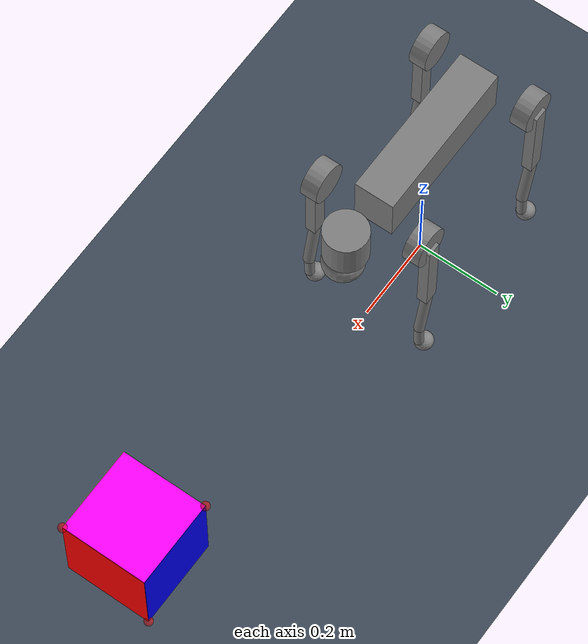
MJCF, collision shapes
<mujoco model="go2 scene">
  <include file="go2_posctrl.xml"/>
  <statistic center="0 0 0.1" extent="0.8"/>

  <visual>
    <headlight diffuse="0.6 0.58 0.55" ambient="0.25 0.25 0.25" specular="0.3 0.3 0.3"/>
    <rgba haze="0.15 0.25 0.35 1"/>
    <global azimuth="140" elevation="-20"/>
  </visual>

  <asset>
    <texture type="skybox" builtin="gradient"
             rgb1="0.4 0.6 0.8" rgb2="0.05 0.08 0.15"
             width="512" height="3072"/>
    <texture type="2d" name="groundplane" builtin="checker" mark="edge"
             rgb1="0.3 0.35 0.4" rgb2="0.18 0.22 0.28"
             markrgb="0.9 0.9 0.9" width="300" height="300"/>
    <material name="groundplane" texture="groundplane"
              texuniform="true" texrepeat="5 5" reflectance="0.35"/>
  </asset>

  <worldbody>
      <camera name="fixed_cam" pos="2.774 -3.206 3.059" xyaxes="0.756 0.654 -0.000 -0.383 0.442 0.811"/>

    <light name="key_light"
           pos="-2 -3 4" dir="0.4 0.6 -0.7"
           diffuse="1.0 0.95 0.85" specular="0.4 0.38 0.32"
           ambient="0.0 0.0 0.0"
           castshadow="true" directional="true"/>

    <light name="fill_light"
           pos="3 2 3" dir="-0.5 -0.4 -0.6"
           diffuse="0.35 0.4 0.5" specular="0.05 0.05 0.08"
           ambient="0.0 0.0 0.0"
           castshadow="false" directional="true"/>

    <geom name="floor" size="0 0 0.05" type="plane" material="groundplane"/>

    <body name="obj" pos="1.0 0.0 0.3">
      <freejoint />

      <!-- Collision + mass go here -->
      <geom name="obj_col"
            type="box"
            size="0.1 0.1 0.1"
            rgba="0 0 0 0"
            mass="0.2"/>

      <!-- Visual faces only (no mass, no collisions) -->

      <!-- +X face -->
      <geom type="box" pos="0.0998 0 0"
            size="0.001 0.1 0.1"
            rgba="1 0 0 1"
            contype="0" conaffinity="0" density="0"/>

      <!-- -X face -->
      <geom type="box" pos="-0.0998 0 0"
            size="0.001 0.1 0.1"
            rgba="0 1 0 1"
            contype="0" conaffinity="0" density="0"/>

      <!-- +Y face -->
      <geom type="box" pos="0 0.0998 0"
            size="0.1 0.001 0.1"
            rgba="0 0 1 1"
            contype="0" conaffinity="0" density="0"/>

      <!-- -Y face -->
      <geom type="box" pos="0 -0.0998 0"
            size="0.1 0.001 0.1"
            rgba="1 1 0 1"
            contype="0" conaffinity="0" density="0"/>

      <!-- +Z face -->
      <geom type="box" pos="0 0 0.0998"
            size="0.1 0.1 0.001"
            rgba="1 0 1 1"
            contype="0" conaffinity="0" density="0"/>

      <!-- -Z face -->
      <geom type="box" pos="0 0 -0.0998"
            size="0.1 0.1 0.001"
            rgba="0 1 1 1"
            contype="0" conaffinity="0" density="0"/>

      <!-- Box markers -->
      <geom name="box_marker_0" type="sphere" pos="-0.0998 0.1 0.1"
            size="0.01"
            rgba="1 0 0 0.5"
            contype="0" conaffinity="0" density="0"/>

      <geom name="box_marker_1" type="sphere" pos="0.1 -0.0998 0.1"
            size="0.01"
            rgba="1 0 0 0.5"
            contype="0" conaffinity="0" density="0"/>

      <geom name="box_marker_2" type="sphere" pos="0.1 0.1 -0.0998"
            size="0.01"
            rgba="1 0 0 0.5"
            contype="0" conaffinity="0" density="0"/>
    </body>
  </worldbody>
</mujoco>

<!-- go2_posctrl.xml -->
<mujoco model="go2">
  <compiler angle="radian" meshdir="assets" autolimits="true"/>

  <option cone="elliptic" impratio="100"/>

  <default>
    <default class="go2">
      <geom friction="0.6" margin="0.001" condim="1"/>
      <joint armature="0.01" frictionloss="0.2"/>
      <position kp="500" dampratio="1" inheritrange="1"/>
      <default class="visual">
        <geom type="mesh" contype="0" conaffinity="0" group="2"/>
      </default>
      <default class="collision">
        <geom group="3"/>
        <default class="foot">
          <geom size="0.022" pos="-0.002 0 -0.213" priority="1" solimp="0.015 1 0.022" condim="6"
            friction="0.8 0.02 0.01"/>
        </default>
      </default>
    </default>
  </default>

  <asset>
    <material name="metal" rgba=".9 .95 .95 1"/>
    <material name="black" rgba="0 0 0 1"/>
    <material name="white" rgba="1 1 1 1"/>
    <material name="gray" rgba="0.671705 0.692426 0.774270 1"/>

    <mesh file="base_0.obj"/>
    <mesh file="base_1.obj"/>
    <mesh file="base_2.obj"/>
    <mesh file="base_3.obj"/>
    <mesh file="base_4.obj"/>
    <mesh file="hip_0.obj"/>
    <mesh file="hip_1.obj"/>
    <mesh file="thigh_0.obj"/>
    <mesh file="thigh_1.obj"/>
    <mesh file="thigh_mirror_0.obj"/>
    <mesh file="thigh_mirror_1.obj"/>
    <mesh file="calf_0.obj"/>
    <mesh file="calf_1.obj"/>
    <mesh file="calf_mirror_0.obj"/>
    <mesh file="calf_mirror_1.obj"/>
    <mesh file="foot.obj"/>
  </asset>

  <worldbody>
    <body name="base" pos="0 0 0.445" childclass="go2">
      <inertial pos="0.021112 0 -0.005366" quat="-0.000543471 0.713435 -0.00173769 0.700719" mass="6.921"
        diaginertia="0.107027 0.0980771 0.0244531"/>
      <freejoint/>
      <geom mesh="base_0" material="black" class="visual"/>
      <geom mesh="base_1" material="black" class="visual"/>
      <geom mesh="base_2" material="black" class="visual"/>
      <geom mesh="base_3" material="white" class="visual"/>
      <geom mesh="base_4" material="gray" class="visual"/>
      <geom size="0.1881 0.04675 0.057" type="box" class="collision"/>
      <geom size="0.05 0.045" pos="0.285 0 0.01" type="cylinder" class="collision"/>
      <geom size="0.047" pos="0.293 0 -0.06" class="collision"/>
      <site name="imu" pos="-0.02557 0 0.04232"/>
      <body name="FL_hip" pos="0.1934 0.0465 0">
        <inertial pos="-0.0054 0.00194 -0.000105" quat="0.497014 0.499245 0.505462 0.498237" mass="0.678"
          diaginertia="0.00088403 0.000596003 0.000479967"/>

        <joint name="FL_hip_joint" axis="1 0 0" range="-1.0472 1.0472" actuatorfrcrange="-23.7 23.7"/>

        <geom mesh="hip_0" material="metal" class="visual"/>
        <geom mesh="hip_1" material="gray" class="visual"/>
        <geom size="0.046 0.02" pos="0 0.08 0" quat="1 1 0 0" type="cylinder" class="collision"/>
        <body name="FL_thigh" pos="0 0.0955 0">
          <inertial pos="-0.00374 -0.0223 -0.0327" quat="0.829533 0.0847635 -0.0200632 0.551623" mass="1.152"
            diaginertia="0.00594973 0.00584149 0.000878787"/>

          <joint name="FL_thigh_joint" axis="0 1 0" range="-1.5708 3.4907" actuatorfrcrange="-23.7 23.7"/>

          <geom mesh="thigh_0" material="metal" class="visual"/>
          <geom mesh="thigh_1" material="gray" class="visual"/>
          <geom size="0.1065 0.01225 0.017" pos="0 0 -0.1065" quat="0.707107 0 0.707107 0" type="box"
            class="collision"/>
          <body name="FL_calf" pos="0 0 -0.213">
            <inertial pos="0.00629595 -0.000622121 -0.141417" quat="0.710672 0.00154099 -0.00450087 0.703508"
              mass="0.241352" diaginertia="0.0014901 0.00146356 5.31397e-05"/>

            <joint name="FL_calf_joint" axis="0 1 0" range="-2.7227 -0.83776" actuatorfrcrange="-45.43 45.43"/>

            <geom mesh="calf_0" material="gray" class="visual"/>
            <geom mesh="calf_1" material="black" class="visual"/>
            <geom size="0.012 0.06" pos="0.008 0 -0.06" quat="0.994493 0 -0.104807 0" type="cylinder"
              class="collision"/>
            <geom size="0.011 0.0325" pos="0.02 0 -0.148" quat="0.999688 0 0.0249974 0" type="cylinder"
              class="collision"/>
            <geom pos="0 0 -0.213" mesh="foot" class="visual" material="black"/>
            <geom name="FL" class="foot"/>
          </body>
        </body>
      </body>
      <body name="FR_hip" pos="0.1934 -0.0465 0">
        <inertial pos="-0.0054 -0.00194 -0.000105" quat="0.498237 0.505462 0.499245 0.497014" mass="0.678"
          diaginertia="0.00088403 0.000596003 0.000479967"/>

        <joint name="FR_hip_joint" axis="1 0 0" range="-1.0472 1.0472" actuatorfrcrange="-23.7 23.7"/>

        <geom mesh="hip_0" material="metal" class="visual" quat="4.63268e-05 1 0 0"/>
        <geom mesh="hip_1" material="gray" class="visual" quat="4.63268e-05 1 0 0"/>
        <geom size="0.046 0.02" pos="0 -0.08 0" quat="0.707107 0.707107 0 0" type="cylinder" class="collision"/>
        <body name="FR_thigh" pos="0 -0.0955 0">
          <inertial pos="-0.00374 0.0223 -0.0327" quat="0.551623 -0.0200632 0.0847635 0.829533" mass="1.152"
            diaginertia="0.00594973 0.00584149 0.000878787"/>

          <joint name="FR_thigh_joint" axis="0 1 0" range="-1.5708 3.4907" actuatorfrcrange="-23.7 23.7"/>

          <geom mesh="thigh_mirror_0" material="metal" class="visual"/>
          <geom mesh="thigh_mirror_1" material="gray" class="visual"/>
          <geom size="0.1065 0.01225 0.017" pos="0 0 -0.1065" quat="0.707107 0 0.707107 0" type="box"
            class="collision"/>
          <body name="FR_calf" pos="0 0 -0.213">
            <inertial pos="0.00629595 0.000622121 -0.141417" quat="0.703508 -0.00450087 0.00154099 0.710672"
              mass="0.241352" diaginertia="0.0014901 0.00146356 5.31397e-05"/>

            <joint name="FR_calf_joint" axis="0 1 0" range="-2.7227 -0.83776" actuatorfrcrange="-45.43 45.43"/>

            <geom mesh="calf_mirror_0" material="gray" class="visual"/>
            <geom mesh="calf_mirror_1" material="black" class="visual"/>
            <geom size="0.013 0.06" pos="0.01 0 -0.06" quat="0.995004 0 -0.0998334 0" type="cylinder"
              class="collision"/>
            <geom size="0.011 0.0325" pos="0.02 0 -0.148" quat="0.999688 0 0.0249974 0" type="cylinder"
              class="collision"/>
            <geom pos="0 0 -0.213" mesh="foot" class="visual" material="black"/>
            <geom name="FR" class="foot"/>
          </body>
        </body>
      </body>
      <body name="RL_hip" pos="-0.1934 0.0465 0">
        <inertial pos="0.0054 0.00194 -0.000105" quat="0.505462 0.498237 0.497014 0.499245" mass="0.678"
          diaginertia="0.00088403 0.000596003 0.000479967"/>

        <joint name="RL_hip_joint" axis="1 0 0" range="-1.0472 1.0472" actuatorfrcrange="-23.7 23.7"/>

        <geom mesh="hip_0" material="metal" class="visual" quat="4.63268e-05 0 1 0"/>
        <geom mesh="hip_1" material="gray" class="visual" quat="4.63268e-05 0 1 0"/>
        <geom size="0.046 0.02" pos="0 0.08 0" quat="0.707107 0.707107 0 0" type="cylinder" class="collision"/>
        <body name="RL_thigh" pos="0 0.0955 0">
          <inertial pos="-0.00374 -0.0223 -0.0327" quat="0.829533 0.0847635 -0.0200632 0.551623" mass="1.152"
            diaginertia="0.00594973 0.00584149 0.000878787"/>

          <joint name="RL_thigh_joint" axis="0 1 0" range="-0.5236 4.5379" actuatorfrcrange="-23.7 23.7"/>

          <geom mesh="thigh_0" material="metal" class="visual"/>
          <geom mesh="thigh_1" material="gray" class="visual"/>
          <geom size="0.1065 0.01225 0.017" pos="0 0 -0.1065" quat="0.707107 0 0.707107 0" type="box"
            class="collision"/>
          <body name="RL_calf" pos="0 0 -0.213">
            <inertial pos="0.00629595 -0.000622121 -0.141417" quat="0.710672 0.00154099 -0.00450087 0.703508"
              mass="0.241352" diaginertia="0.0014901 0.00146356 5.31397e-05"/>

            <joint name="RL_calf_joint" axis="0 1 0" range="-2.7227 -0.83776" actuatorfrcrange="-45.43 45.43"/>

            <geom mesh="calf_0" material="gray" class="visual"/>
            <geom mesh="calf_1" material="black" class="visual"/>
            <geom size="0.013 0.06" pos="0.01 0 -0.06" quat="0.995004 0 -0.0998334 0" type="cylinder"
              class="collision"/>
            <geom size="0.011 0.0325" pos="0.02 0 -0.148" quat="0.999688 0 0.0249974 0" type="cylinder"
              class="collision"/>
            <geom pos="0 0 -0.213" mesh="foot" class="visual" material="black"/>
            <geom name="RL" class="foot"/>
          </body>
        </body>
      </body>
      <body name="RR_hip" pos="-0.1934 -0.0465 0">
        <inertial pos="0.0054 -0.00194 -0.000105" quat="0.499245 0.497014 0.498237 0.505462" mass="0.678"
          diaginertia="0.00088403 0.000596003 0.000479967"/>

        <joint name="RR_hip_joint" axis="1 0 0" range="-1.0472 1.0472" actuatorfrcrange="-23.7 23.7"/>

        <geom mesh="hip_0" material="metal" class="visual" quat="2.14617e-09 4.63268e-05 4.63268e-05 -1"/>
        <geom mesh="hip_1" material="gray" class="visual" quat="2.14617e-09 4.63268e-05 4.63268e-05 -1"/>
        <geom size="0.046 0.02" pos="0 -0.08 0" quat="0.707107 0.707107 0 0" type="cylinder" class="collision"/>
        <body name="RR_thigh" pos="0 -0.0955 0">
          <inertial pos="-0.00374 0.0223 -0.0327" quat="0.551623 -0.0200632 0.0847635 0.829533" mass="1.152"
            diaginertia="0.00594973 0.00584149 0.000878787"/>

          <joint name="RR_thigh_joint" axis="0 1 0" range="-0.5236 4.5379" actuatorfrcrange="-23.7 23.7"/>

          <geom mesh="thigh_mirror_0" material="metal" class="visual"/>
          <geom mesh="thigh_mirror_1" material="gray" class="visual"/>
          <geom size="0.1065 0.01225 0.017" pos="0 0 -0.1065" quat="0.707107 0 0.707107 0" type="box"
            class="collision"/>
          <body name="RR_calf" pos="0 0 -0.213">
            <inertial pos="0.00629595 0.000622121 -0.141417" quat="0.703508 -0.00450087 0.00154099 0.710672"
              mass="0.241352" diaginertia="0.0014901 0.00146356 5.31397e-05"/>

            <joint name="RR_calf_joint" axis="0 1 0" range="-2.7227 -0.83776" actuatorfrcrange="-45.43 45.43"/>

            <geom mesh="calf_mirror_0" material="gray" class="visual"/>
            <geom mesh="calf_mirror_1" material="black" class="visual"/>
            <geom size="0.013 0.06" pos="0.01 0 -0.06" quat="0.995004 0 -0.0998334 0" type="cylinder"
              class="collision"/>
            <geom size="0.011 0.0325" pos="0.02 0 -0.148" quat="0.999688 0 0.0249974 0" type="cylinder"
              class="collision"/>
            <geom pos="0 0 -0.213" mesh="foot" class="visual" material="black"/>
            <geom name="RR" class="foot"/>
          </body>
        </body>
      </body>
    </body>
  </worldbody>

  <actuator>
    <position class="go2" name="FL_hip_joint" joint="FL_hip_joint"/>
    <position class="go2" name="FL_thigh_joint" joint="FL_thigh_joint"/>
    <position class="go2" name="FL_calf_joint" joint="FL_calf_joint"/>

    <position class="go2" name="FR_hip_joint" joint="FR_hip_joint"/>
    <position class="go2" name="FR_thigh_joint" joint="FR_thigh_joint"/>
    <position class="go2" name="FR_calf_joint" joint="FR_calf_joint"/>

    <position class="go2" name="RL_hip_joint" joint="RL_hip_joint"/>
    <position class="go2" name="RL_thigh_joint" joint="RL_thigh_joint"/>
    <position class="go2" name="RL_calf_joint" joint="RL_calf_joint"/>

    <position class="go2" name="RR_hip_joint" joint="RR_hip_joint"/>
    <position class="go2" name="RR_thigh_joint" joint="RR_thigh_joint"/>
    <position class="go2" name="RR_calf_joint" joint="RR_calf_joint"/>
  </actuator>

  <keyframe>
    <key name="home" qpos="0 0 0.27 1 0 0 0 0 0.9 -1.8 0 0.9 -1.8 0 0.9 -1.8 0 0.9 -1.8"
      ctrl="0 0.9 -1.8 0 0.9 -1.8 0 0.9 -1.8 0 0.9 -1.8"/>
  </keyframe>
</mujoco>
